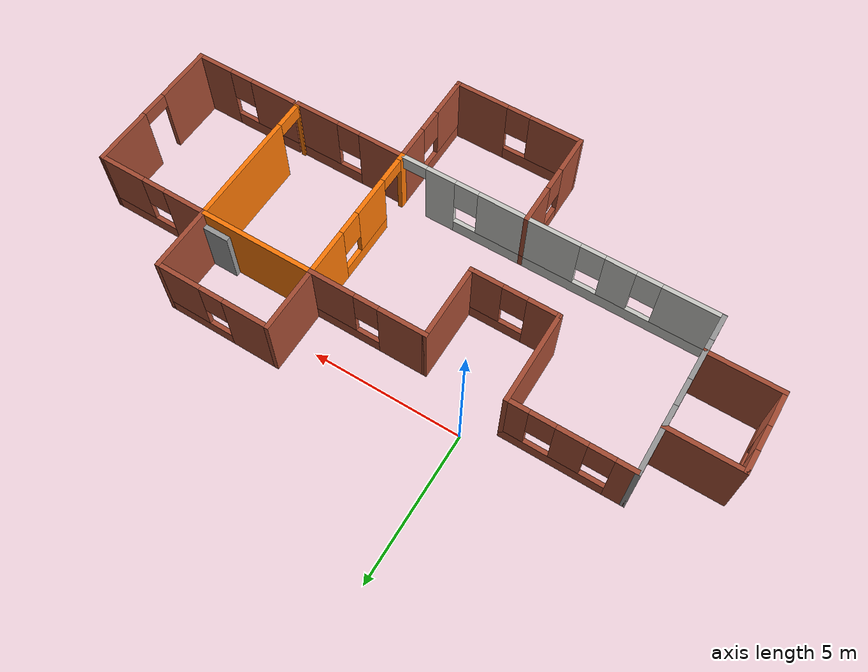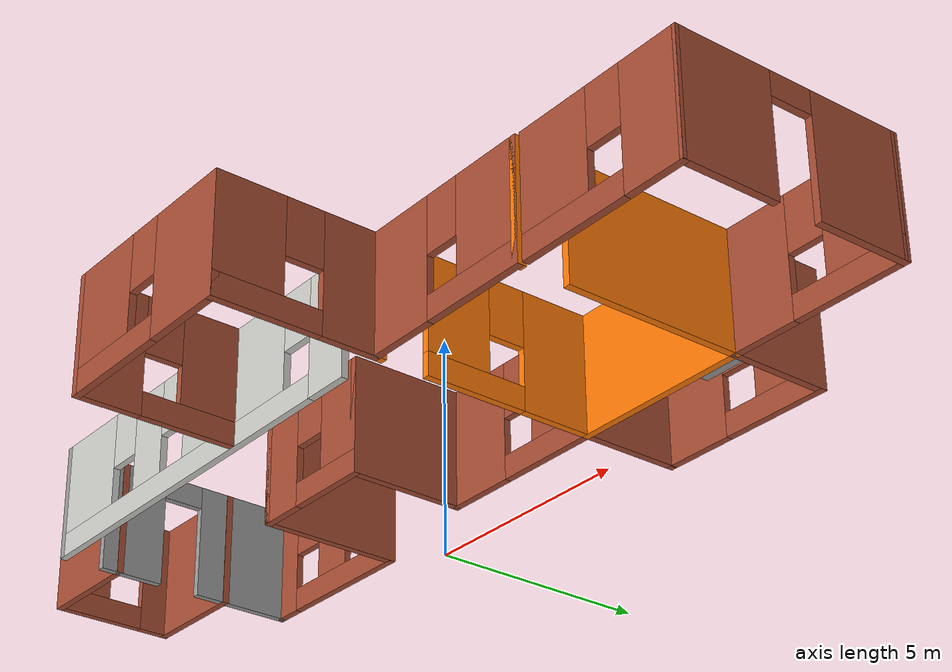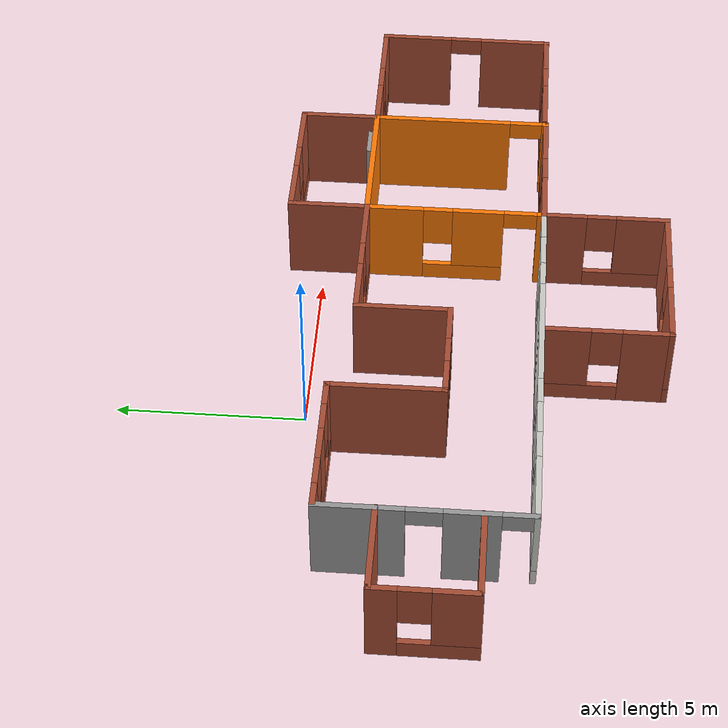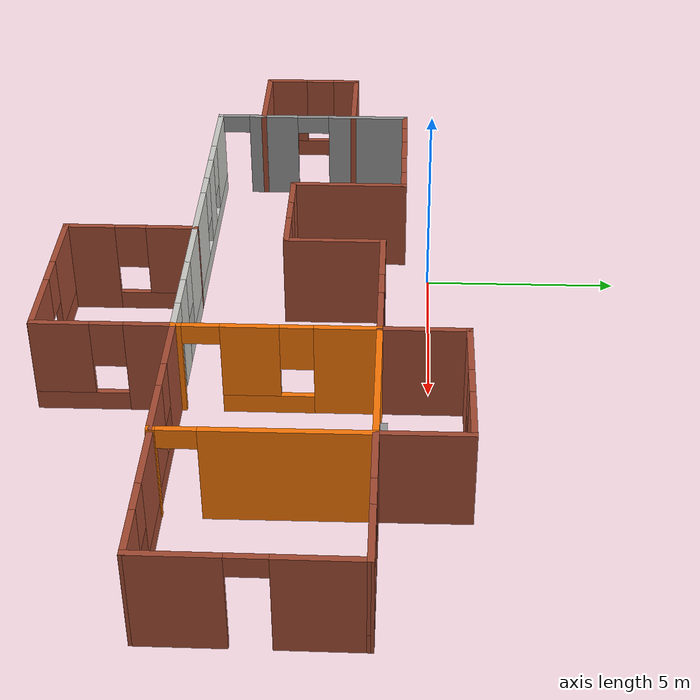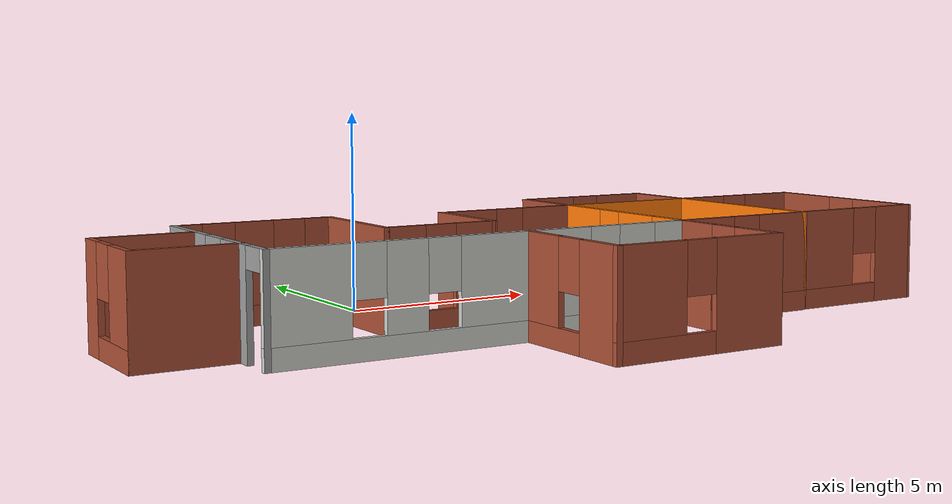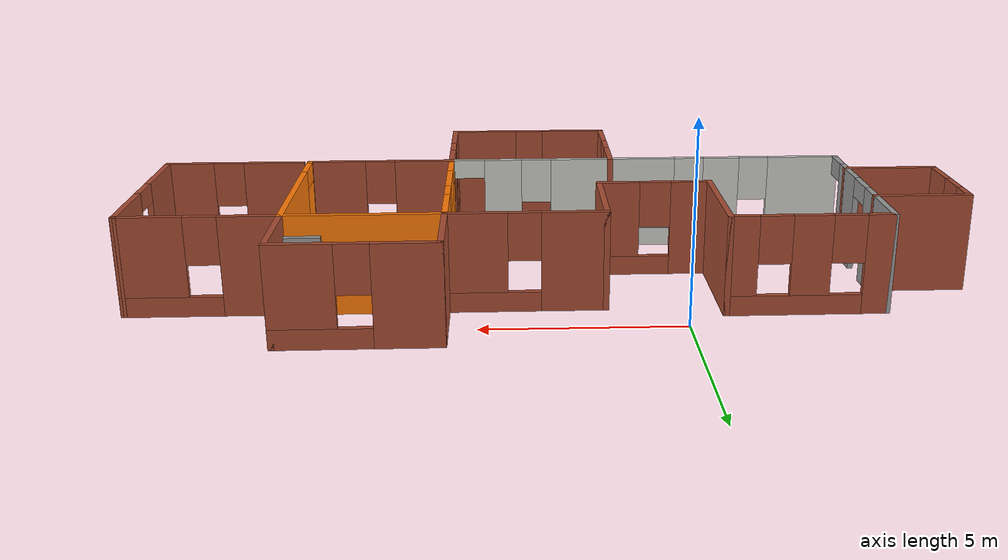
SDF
<?xml version='1.0'?>
<sdf version='1.6'>
  <model name='Level_1'>
    <pose frame=''>3.11777 -4.24 0 0 -0 0</pose>
    <link name='Door_3'>
      <collision name='Door_3_Collision'>
        <geometry>
          <box>
            <size>0.9 0.17 2</size>
          </box>
        </geometry>
        <pose frame=''>0 0 1 0 -0 0</pose>
      </collision>
      <visual name='Door_3_Visual'>
        <pose frame=''>0 0 1 0 -0 0</pose>
        <geometry>
          <box>
            <size>0.9 0.17 2</size>
          </box>
        </geometry>
        <material>
          <script>
            <uri>file://media/materials/scripts/gazebo.material</uri>
            <name>Gazebo/Grey</name>
          </script>
        </material>
      </visual>
      <pose frame=''>5.97774 3.20768 0 0 -0 0</pose>
    </link>
    <link name='Wall_0'>
      <pose frame=''>-6.00277 3.55 0 0 -0 0</pose>
      <visual name='Wall_0_Visual_0'>
        <pose frame=''>-1.66505 0 1.25 0 -0 0</pose>
        <geometry>
          <box>
            <size>0.669906 0.15 2.5</size>
          </box>
        </geometry>
        <material>
          <script>
            <uri>file://media/materials/scripts/gazebo.material</uri>
            <name>Gazebo/Bricks</name>
          </script>
          <ambient>1 1 1 1</ambient>
        </material>
        <meta>
          <layer>0</layer>
        </meta>
      </visual>
      <collision name='Wall_0_Collision_0'>
        <geometry>
          <box>
            <size>0.669906 0.15 2.5</size>
          </box>
        </geometry>
        <pose frame=''>-1.66505 0 1.25 0 -0 0</pose>
      </collision>
      <visual name='Wall_0_Visual_1'>
        <pose frame=''>0.334953 0 0.25 0 -0 0</pose>
        <geometry>
          <box>
            <size>3.33009 0.15 0.5</size>
          </box>
        </geometry>
        <material>
          <script>
            <uri>file://media/materials/scripts/gazebo.material</uri>
            <name>Gazebo/Bricks</name>
          </script>
          <ambient>1 1 1 1</ambient>
        </material>
        <meta>
          <layer>0</layer>
        </meta>
      </visual>
      <collision name='Wall_0_Collision_1'>
        <geometry>
          <box>
            <size>3.33009 0.15 0.5</size>
          </box>
        </geometry>
        <pose frame=''>0.334953 0 0.25 0 -0 0</pose>
      </collision>
      <visual name='Wall_0_Visual_2'>
        <pose frame=''>-0.050625 0 1.5 0 -0 0</pose>
        <geometry>
          <box>
            <size>0.958938 0.15 2</size>
          </box>
        </geometry>
        <material>
          <script>
            <uri>file://media/materials/scripts/gazebo.material</uri>
            <name>Gazebo/Bricks</name>
          </script>
          <ambient>1 1 1 1</ambient>
        </material>
        <meta>
          <layer>0</layer>
        </meta>
      </visual>
      <collision name='Wall_0_Collision_2'>
        <geometry>
          <box>
            <size>0.958938 0.15 2</size>
          </box>
        </geometry>
        <pose frame=''>-0.050625 0 1.5 0 -0 0</pose>
      </collision>
      <visual name='Wall_0_Visual_3'>
        <pose frame=''>1.61442 0 1.5 0 -0 0</pose>
        <geometry>
          <box>
            <size>0.771156 0.15 2</size>
          </box>
        </geometry>
        <material>
          <script>
            <uri>file://media/materials/scripts/gazebo.material</uri>
            <name>Gazebo/Bricks</name>
          </script>
          <ambient>1 1 1 1</ambient>
        </material>
        <meta>
          <layer>0</layer>
        </meta>
      </visual>
      <collision name='Wall_0_Collision_3'>
        <geometry>
          <box>
            <size>0.771156 0.15 2</size>
          </box>
        </geometry>
        <pose frame=''>1.61442 0 1.5 0 -0 0</pose>
      </collision>
      <visual name='Wall_0_Visual_4'>
        <pose frame=''>-0.930094 0 1.9 0 -0 0</pose>
        <geometry>
          <box>
            <size>0.8 0.15 1.2</size>
          </box>
        </geometry>
        <material>
          <script>
            <uri>file://media/materials/scripts/gazebo.material</uri>
            <name>Gazebo/Bricks</name>
          </script>
          <ambient>1 1 1 1</ambient>
        </material>
        <meta>
          <layer>0</layer>
        </meta>
      </visual>
      <collision name='Wall_0_Collision_4'>
        <geometry>
          <box>
            <size>0.8 0.15 1.2</size>
          </box>
        </geometry>
        <pose frame=''>-0.930094 0 1.9 0 -0 0</pose>
      </collision>
      <visual name='Wall_0_Visual_5'>
        <pose frame=''>0.828844 0 1.9 0 -0 0</pose>
        <geometry>
          <box>
            <size>0.8 0.15 1.2</size>
          </box>
        </geometry>
        <material>
          <script>
            <uri>file://media/materials/scripts/gazebo.material</uri>
            <name>Gazebo/Bricks</name>
          </script>
          <ambient>1 1 1 1</ambient>
        </material>
        <meta>
          <layer>0</layer>
        </meta>
      </visual>
      <collision name='Wall_0_Collision_5'>
        <geometry>
          <box>
            <size>0.8 0.15 1.2</size>
          </box>
        </geometry>
        <pose frame=''>0.828844 0 1.9 0 -0 0</pose>
      </collision>
    </link>
    <link name='Wall_1'>
      <collision name='Wall_1_Collision'>
        <geometry>
          <box>
            <size>3.121 0.15 2.5</size>
          </box>
        </geometry>
        <pose frame=''>0 0 1.25 0 -0 0</pose>
      </collision>
      <visual name='Wall_1_Visual'>
        <pose frame=''>0 0 1.25 0 -0 0</pose>
        <geometry>
          <box>
            <size>3.121 0.15 2.5</size>
          </box>
        </geometry>
        <material>
          <script>
            <uri>file://media/materials/scripts/gazebo.material</uri>
            <name>Gazebo/Bricks</name>
          </script>
          <ambient>1 1 1 1</ambient>
        </material>
        <meta>
          <layer>0</layer>
        </meta>
      </visual>
      <pose frame=''>-4.07777 2.0645 0 0 0 -1.5708</pose>
    </link>
    <link name='Wall_10'>
      <pose frame=''>-10.3228 0.751 0 0 0 -1.5708</pose>
      <visual name='Wall_10_Visual_0'>
        <pose frame=''>-0.99483 0 1.25 0 -0 0</pose>
        <geometry>
          <box>
            <size>0.76034 0.15 2.5</size>
          </box>
        </geometry>
        <material>
          <script>
            <uri>file://media/materials/scripts/gazebo.material</uri>
            <name>Gazebo/Bricks</name>
          </script>
          <ambient>1 1 1 1</ambient>
        </material>
        <meta>
          <layer>0</layer>
        </meta>
      </visual>
      <collision name='Wall_10_Collision_0'>
        <geometry>
          <box>
            <size>0.76034 0.15 2.5</size>
          </box>
        </geometry>
        <pose frame=''>-0.99483 0 1.25 0 -0 0</pose>
      </collision>
      <visual name='Wall_10_Visual_1'>
        <pose frame=''>0.38017 0 0.25 0 -0 0</pose>
        <geometry>
          <box>
            <size>1.98966 0.15 0.5</size>
          </box>
        </geometry>
        <material>
          <script>
            <uri>file://media/materials/scripts/gazebo.material</uri>
            <name>Gazebo/Bricks</name>
          </script>
          <ambient>1 1 1 1</ambient>
        </material>
        <meta>
          <layer>0</layer>
        </meta>
      </visual>
      <collision name='Wall_10_Collision_1'>
        <geometry>
          <box>
            <size>1.98966 0.15 0.5</size>
          </box>
        </geometry>
        <pose frame=''>0.38017 0 0.25 0 -0 0</pose>
      </collision>
      <visual name='Wall_10_Visual_2'>
        <pose frame=''>0.78017 0 1.5 0 -0 0</pose>
        <geometry>
          <box>
            <size>1.18966 0.15 2</size>
          </box>
        </geometry>
        <material>
          <script>
            <uri>file://media/materials/scripts/gazebo.material</uri>
            <name>Gazebo/Bricks</name>
          </script>
          <ambient>1 1 1 1</ambient>
        </material>
        <meta>
          <layer>0</layer>
        </meta>
      </visual>
      <collision name='Wall_10_Collision_2'>
        <geometry>
          <box>
            <size>1.18966 0.15 2</size>
          </box>
        </geometry>
        <pose frame=''>0.78017 0 1.5 0 -0 0</pose>
      </collision>
      <visual name='Wall_10_Visual_3'>
        <pose frame=''>-0.21466 0 1.9 0 -0 0</pose>
        <geometry>
          <box>
            <size>0.8 0.15 1.2</size>
          </box>
        </geometry>
        <material>
          <script>
            <uri>file://media/materials/scripts/gazebo.material</uri>
            <name>Gazebo/Bricks</name>
          </script>
          <ambient>1 1 1 1</ambient>
        </material>
        <meta>
          <layer>0</layer>
        </meta>
      </visual>
      <collision name='Wall_10_Collision_3'>
        <geometry>
          <box>
            <size>0.8 0.15 1.2</size>
          </box>
        </geometry>
        <pose frame=''>-0.21466 0 1.9 0 -0 0</pose>
      </collision>
    </link>
    <link name='Wall_11'>
      <collision name='Wall_11_Collision'>
        <geometry>
          <box>
            <size>2.5 0.15 2.5</size>
          </box>
        </geometry>
        <pose frame=''>0 0 1.25 0 -0 0</pose>
      </collision>
      <visual name='Wall_11_Visual'>
        <pose frame=''>0 0 1.25 0 -0 0</pose>
        <geometry>
          <box>
            <size>2.5 0.15 2.5</size>
          </box>
        </geometry>
        <material>
          <script>
            <uri>file://media/materials/scripts/gazebo.material</uri>
            <name>Gazebo/Bricks</name>
          </script>
          <ambient>1 1 1 1</ambient>
        </material>
        <meta>
          <layer>0</layer>
        </meta>
      </visual>
      <pose frame=''>-9.14777 -0.549 0 0 -0 0</pose>
    </link>
    <link name='Wall_13'>
      <pose frame=''>4.54723 -1.8 0 0 -0 0</pose>
      <visual name='Wall_13_Visual_0'>
        <pose frame=''>-1.18832 0 1.25 0 -0 0</pose>
        <geometry>
          <box>
            <size>1.62336 0.15 2.5</size>
          </box>
        </geometry>
        <material>
          <script>
            <uri>file://media/materials/scripts/gazebo.material</uri>
            <name>Gazebo/Bricks</name>
          </script>
          <ambient>1 1 1 1</ambient>
        </material>
        <meta>
          <layer>0</layer>
        </meta>
      </visual>
      <collision name='Wall_13_Collision_0'>
        <geometry>
          <box>
            <size>1.62336 0.15 2.5</size>
          </box>
        </geometry>
        <pose frame=''>-1.18832 0 1.25 0 -0 0</pose>
      </collision>
      <visual name='Wall_13_Visual_1'>
        <pose frame=''>0.811681 0 0.25 0 -0 0</pose>
        <geometry>
          <box>
            <size>2.37664 0.15 0.5</size>
          </box>
        </geometry>
        <material>
          <script>
            <uri>file://media/materials/scripts/gazebo.material</uri>
            <name>Gazebo/Bricks</name>
          </script>
          <ambient>1 1 1 1</ambient>
        </material>
        <meta>
          <layer>0</layer>
        </meta>
      </visual>
      <collision name='Wall_13_Collision_1'>
        <geometry>
          <box>
            <size>2.37664 0.15 0.5</size>
          </box>
        </geometry>
        <pose frame=''>0.811681 0 0.25 0 -0 0</pose>
      </collision>
      <visual name='Wall_13_Visual_2'>
        <pose frame=''>1.21168 0 1.5 0 -0 0</pose>
        <geometry>
          <box>
            <size>1.57664 0.15 2</size>
          </box>
        </geometry>
        <material>
          <script>
            <uri>file://media/materials/scripts/gazebo.material</uri>
            <name>Gazebo/Bricks</name>
          </script>
          <ambient>1 1 1 1</ambient>
        </material>
        <meta>
          <layer>0</layer>
        </meta>
      </visual>
      <collision name='Wall_13_Collision_2'>
        <geometry>
          <box>
            <size>1.57664 0.15 2</size>
          </box>
        </geometry>
        <pose frame=''>1.21168 0 1.5 0 -0 0</pose>
      </collision>
      <visual name='Wall_13_Visual_3'>
        <pose frame=''>0.023361 0 1.9 0 -0 0</pose>
        <geometry>
          <box>
            <size>0.8 0.15 1.2</size>
          </box>
        </geometry>
        <material>
          <script>
            <uri>file://media/materials/scripts/gazebo.material</uri>
            <name>Gazebo/Bricks</name>
          </script>
          <ambient>1 1 1 1</ambient>
        </material>
        <meta>
          <layer>0</layer>
        </meta>
      </visual>
      <collision name='Wall_13_Collision_3'>
        <geometry>
          <box>
            <size>0.8 0.15 1.2</size>
          </box>
        </geometry>
        <pose frame=''>0.023361 0 1.9 0 -0 0</pose>
      </collision>
    </link>
    <link name='Wall_14'>
      <pose frame=''>6.47223 0.625 0 0 -0 1.5708</pose>
      <visual name='Wall_14_Visual_0'>
        <pose frame=''>-2.39992 0 1.25 0 -0 0</pose>
        <geometry>
          <box>
            <size>0.200158 0.15 2.5</size>
          </box>
        </geometry>
        <material>
          <script>
            <uri>file://media/materials/scripts/gazebo.material</uri>
            <name>Gazebo/Grey</name>
          </script>
          <ambient>0.996078 0.47451 0.0196078 1</ambient>
        </material>
        <meta>
          <layer>0</layer>
        </meta>
      </visual>
      <collision name='Wall_14_Collision_0'>
        <geometry>
          <box>
            <size>0.200158 0.15 2.5</size>
          </box>
        </geometry>
        <pose frame=''>-2.39992 0 1.25 0 -0 0</pose>
      </collision>
      <visual name='Wall_14_Visual_1'>
        <pose frame=''>0.550079 0 1.25 0 -0 0</pose>
        <geometry>
          <box>
            <size>3.89984 0.15 2.5</size>
          </box>
        </geometry>
        <material>
          <script>
            <uri>file://media/materials/scripts/gazebo.material</uri>
            <name>Gazebo/Grey</name>
          </script>
          <ambient>0.996078 0.47451 0.0196078 1</ambient>
        </material>
        <meta>
          <layer>0</layer>
        </meta>
      </visual>
      <collision name='Wall_14_Collision_1'>
        <geometry>
          <box>
            <size>3.89984 0.15 2.5</size>
          </box>
        </geometry>
        <pose frame=''>0.550079 0 1.25 0 -0 0</pose>
      </collision>
      <visual name='Wall_14_Visual_2'>
        <pose frame=''>-1.84984 0 2.25 0 -0 0</pose>
        <geometry>
          <box>
            <size>0.9 0.15 0.5</size>
          </box>
        </geometry>
        <material>
          <script>
            <uri>file://media/materials/scripts/gazebo.material</uri>
            <name>Gazebo/Grey</name>
          </script>
          <ambient>0.996078 0.47451 0.0196078 1</ambient>
        </material>
        <meta>
          <layer>0</layer>
        </meta>
      </visual>
      <collision name='Wall_14_Collision_2'>
        <geometry>
          <box>
            <size>0.9 0.15 0.5</size>
          </box>
        </geometry>
        <pose frame=''>-1.84984 0 2.25 0 -0 0</pose>
      </collision>
    </link>
    <link name='Wall_15'>
      <collision name='Wall_15_Collision'>
        <geometry>
          <box>
            <size>4 0.15 2.5</size>
          </box>
        </geometry>
        <pose frame=''>0 0 1.25 0 -0 0</pose>
      </collision>
      <visual name='Wall_15_Visual'>
        <pose frame=''>0 0 1.25 0 -0 0</pose>
        <geometry>
          <box>
            <size>4 0.15 2.5</size>
          </box>
        </geometry>
        <material>
          <script>
            <uri>file://media/materials/scripts/gazebo.material</uri>
            <name>Gazebo/Grey</name>
          </script>
          <ambient>0.996078 0.47451 0.0196078 1</ambient>
        </material>
        <meta>
          <layer>0</layer>
        </meta>
      </visual>
      <pose frame=''>4.54723 3.05 0 0 -0 3.14159</pose>
    </link>
    <link name='Wall_16'>
      <collision name='Wall_16_Collision'>
        <geometry>
          <box>
            <size>2.25 0.15 2.5</size>
          </box>
        </geometry>
        <pose frame=''>0 0 1.25 0 -0 0</pose>
      </collision>
      <visual name='Wall_16_Visual'>
        <pose frame=''>0 0 1.25 0 -0 0</pose>
        <geometry>
          <box>
            <size>2.25 0.15 2.5</size>
          </box>
        </geometry>
        <material>
          <script>
            <uri>file://media/materials/scripts/gazebo.material</uri>
            <name>Gazebo/Bricks</name>
          </script>
          <ambient>1 1 1 1</ambient>
        </material>
        <meta>
          <layer>0</layer>
        </meta>
      </visual>
      <pose frame=''>2.62223 4.1 0 0 -0 1.5708</pose>
    </link>
    <link name='Wall_17'>
      <pose frame=''>4.54723 5.15 0 0 -0 0</pose>
      <visual name='Wall_17_Visual_0'>
        <pose frame=''>-1.18832 0 1.25 0 -0 0</pose>
        <geometry>
          <box>
            <size>1.62336 0.15 2.5</size>
          </box>
        </geometry>
        <material>
          <script>
            <uri>file://media/materials/scripts/gazebo.material</uri>
            <name>Gazebo/Bricks</name>
          </script>
          <ambient>1 1 1 1</ambient>
        </material>
        <meta>
          <layer>0</layer>
        </meta>
      </visual>
      <collision name='Wall_17_Collision_0'>
        <geometry>
          <box>
            <size>1.62336 0.15 2.5</size>
          </box>
        </geometry>
        <pose frame=''>-1.18832 0 1.25 0 -0 0</pose>
      </collision>
      <visual name='Wall_17_Visual_1'>
        <pose frame=''>0.811681 0 0.25 0 -0 0</pose>
        <geometry>
          <box>
            <size>2.37664 0.15 0.5</size>
          </box>
        </geometry>
        <material>
          <script>
            <uri>file://media/materials/scripts/gazebo.material</uri>
            <name>Gazebo/Bricks</name>
          </script>
          <ambient>1 1 1 1</ambient>
        </material>
        <meta>
          <layer>0</layer>
        </meta>
      </visual>
      <collision name='Wall_17_Collision_1'>
        <geometry>
          <box>
            <size>2.37664 0.15 0.5</size>
          </box>
        </geometry>
        <pose frame=''>0.811681 0 0.25 0 -0 0</pose>
      </collision>
      <visual name='Wall_17_Visual_2'>
        <pose frame=''>1.21168 0 1.5 0 -0 0</pose>
        <geometry>
          <box>
            <size>1.57664 0.15 2</size>
          </box>
        </geometry>
        <material>
          <script>
            <uri>file://media/materials/scripts/gazebo.material</uri>
            <name>Gazebo/Bricks</name>
          </script>
          <ambient>1 1 1 1</ambient>
        </material>
        <meta>
          <layer>0</layer>
        </meta>
      </visual>
      <collision name='Wall_17_Collision_2'>
        <geometry>
          <box>
            <size>1.57664 0.15 2</size>
          </box>
        </geometry>
        <pose frame=''>1.21168 0 1.5 0 -0 0</pose>
      </collision>
      <visual name='Wall_17_Visual_3'>
        <pose frame=''>0.023361 0 1.9 0 -0 0</pose>
        <geometry>
          <box>
            <size>0.8 0.15 1.2</size>
          </box>
        </geometry>
        <material>
          <script>
            <uri>file://media/materials/scripts/gazebo.material</uri>
            <name>Gazebo/Bricks</name>
          </script>
          <ambient>1 1 1 1</ambient>
        </material>
        <meta>
          <layer>0</layer>
        </meta>
      </visual>
      <collision name='Wall_17_Collision_3'>
        <geometry>
          <box>
            <size>0.8 0.15 1.2</size>
          </box>
        </geometry>
        <pose frame=''>0.023361 0 1.9 0 -0 0</pose>
      </collision>
    </link>
    <link name='Wall_18'>
      <collision name='Wall_18_Collision'>
        <geometry>
          <box>
            <size>2.25 0.15 2.5</size>
          </box>
        </geometry>
        <pose frame=''>0 0 1.25 0 -0 0</pose>
      </collision>
      <visual name='Wall_18_Visual'>
        <pose frame=''>0 0 1.25 0 -0 0</pose>
        <geometry>
          <box>
            <size>2.25 0.15 2.5</size>
          </box>
        </geometry>
        <material>
          <script>
            <uri>file://media/materials/scripts/gazebo.material</uri>
            <name>Gazebo/Bricks</name>
          </script>
          <ambient>1 1 1 1</ambient>
        </material>
        <meta>
          <layer>0</layer>
        </meta>
      </visual>
      <pose frame=''>6.47223 4.1 0 0 0 -1.5708</pose>
    </link>
    <link name='Wall_2'>
      <pose frame=''>-2.65277 0.579 0 0 -0 0</pose>
      <visual name='Wall_2_Visual_0'>
        <pose frame=''>-0.961732 0 1.25 0 -0 0</pose>
        <geometry>
          <box>
            <size>1.07654 0.15 2.5</size>
          </box>
        </geometry>
        <material>
          <script>
            <uri>file://media/materials/scripts/gazebo.material</uri>
            <name>Gazebo/Bricks</name>
          </script>
          <ambient>1 1 1 1</ambient>
        </material>
        <meta>
          <layer>0</layer>
        </meta>
      </visual>
      <collision name='Wall_2_Collision_0'>
        <geometry>
          <box>
            <size>1.07654 0.15 2.5</size>
          </box>
        </geometry>
        <pose frame=''>-0.961732 0 1.25 0 -0 0</pose>
      </collision>
      <visual name='Wall_2_Visual_1'>
        <pose frame=''>0.538268 0 0.25 0 -0 0</pose>
        <geometry>
          <box>
            <size>1.92346 0.15 0.5</size>
          </box>
        </geometry>
        <material>
          <script>
            <uri>file://media/materials/scripts/gazebo.material</uri>
            <name>Gazebo/Bricks</name>
          </script>
          <ambient>1 1 1 1</ambient>
        </material>
        <meta>
          <layer>0</layer>
        </meta>
      </visual>
      <collision name='Wall_2_Collision_1'>
        <geometry>
          <box>
            <size>1.92346 0.15 0.5</size>
          </box>
        </geometry>
        <pose frame=''>0.538268 0 0.25 0 -0 0</pose>
      </collision>
      <visual name='Wall_2_Visual_2'>
        <pose frame=''>0.938268 0 1.5 0 -0 0</pose>
        <geometry>
          <box>
            <size>1.12346 0.15 2</size>
          </box>
        </geometry>
        <material>
          <script>
            <uri>file://media/materials/scripts/gazebo.material</uri>
            <name>Gazebo/Bricks</name>
          </script>
          <ambient>1 1 1 1</ambient>
        </material>
        <meta>
          <layer>0</layer>
        </meta>
      </visual>
      <collision name='Wall_2_Collision_2'>
        <geometry>
          <box>
            <size>1.12346 0.15 2</size>
          </box>
        </geometry>
        <pose frame=''>0.938268 0 1.5 0 -0 0</pose>
      </collision>
      <visual name='Wall_2_Visual_3'>
        <pose frame=''>-0.023464 0 1.9 0 -0 0</pose>
        <geometry>
          <box>
            <size>0.8 0.15 1.2</size>
          </box>
        </geometry>
        <material>
          <script>
            <uri>file://media/materials/scripts/gazebo.material</uri>
            <name>Gazebo/Bricks</name>
          </script>
          <ambient>1 1 1 1</ambient>
        </material>
        <meta>
          <layer>0</layer>
        </meta>
      </visual>
      <collision name='Wall_2_Collision_3'>
        <geometry>
          <box>
            <size>0.8 0.15 1.2</size>
          </box>
        </geometry>
        <pose frame=''>-0.023464 0 1.9 0 -0 0</pose>
      </collision>
    </link>
    <link name='Wall_20'>
      <pose frame=''>2.62223 -3.475 0 0 0 -1.5708</pose>
      <visual name='Wall_20_Visual_0'>
        <pose frame=''>-1.12713 0 1.25 0 -0 0</pose>
        <geometry>
          <box>
            <size>1.24575 0.15 2.5</size>
          </box>
        </geometry>
        <material>
          <script>
            <uri>file://media/materials/scripts/gazebo.material</uri>
            <name>Gazebo/Bricks</name>
          </script>
          <ambient>1 1 1 1</ambient>
        </material>
        <meta>
          <layer>0</layer>
        </meta>
      </visual>
      <collision name='Wall_20_Collision_0'>
        <geometry>
          <box>
            <size>1.24575 0.15 2.5</size>
          </box>
        </geometry>
        <pose frame=''>-1.12713 0 1.25 0 -0 0</pose>
      </collision>
      <visual name='Wall_20_Visual_1'>
        <pose frame=''>0.622873 0 0.25 0 -0 0</pose>
        <geometry>
          <box>
            <size>2.25425 0.15 0.5</size>
          </box>
        </geometry>
        <material>
          <script>
            <uri>file://media/materials/scripts/gazebo.material</uri>
            <name>Gazebo/Bricks</name>
          </script>
          <ambient>1 1 1 1</ambient>
        </material>
        <meta>
          <layer>0</layer>
        </meta>
      </visual>
      <collision name='Wall_20_Collision_1'>
        <geometry>
          <box>
            <size>2.25425 0.15 0.5</size>
          </box>
        </geometry>
        <pose frame=''>0.622873 0 0.25 0 -0 0</pose>
      </collision>
      <visual name='Wall_20_Visual_2'>
        <pose frame=''>1.02287 0 1.5 0 -0 0</pose>
        <geometry>
          <box>
            <size>1.45425 0.15 2</size>
          </box>
        </geometry>
        <material>
          <script>
            <uri>file://media/materials/scripts/gazebo.material</uri>
            <name>Gazebo/Bricks</name>
          </script>
          <ambient>1 1 1 1</ambient>
        </material>
        <meta>
          <layer>0</layer>
        </meta>
      </visual>
      <collision name='Wall_20_Collision_2'>
        <geometry>
          <box>
            <size>1.45425 0.15 2</size>
          </box>
        </geometry>
        <pose frame=''>1.02287 0 1.5 0 -0 0</pose>
      </collision>
      <visual name='Wall_20_Visual_3'>
        <pose frame=''>-0.104254 0 1.9 0 -0 0</pose>
        <geometry>
          <box>
            <size>0.8 0.15 1.2</size>
          </box>
        </geometry>
        <material>
          <script>
            <uri>file://media/materials/scripts/gazebo.material</uri>
            <name>Gazebo/Bricks</name>
          </script>
          <ambient>1 1 1 1</ambient>
        </material>
        <meta>
          <layer>0</layer>
        </meta>
      </visual>
      <collision name='Wall_20_Collision_3'>
        <geometry>
          <box>
            <size>0.8 0.15 1.2</size>
          </box>
        </geometry>
        <pose frame=''>-0.104254 0 1.9 0 -0 0</pose>
      </collision>
    </link>
    <link name='Wall_21'>
      <pose frame=''>0.447228 -5.15 0 0 -0 3.14159</pose>
      <visual name='Wall_21_Visual_0'>
        <pose frame=''>-1.31113 0 1.25 0 -0 0</pose>
        <geometry>
          <box>
            <size>1.87773 0.15 2.5</size>
          </box>
        </geometry>
        <material>
          <script>
            <uri>file://media/materials/scripts/gazebo.material</uri>
            <name>Gazebo/Bricks</name>
          </script>
          <ambient>1 1 1 1</ambient>
        </material>
        <meta>
          <layer>0</layer>
        </meta>
      </visual>
      <collision name='Wall_21_Collision_0'>
        <geometry>
          <box>
            <size>1.87773 0.15 2.5</size>
          </box>
        </geometry>
        <pose frame=''>-1.31113 0 1.25 0 -0 0</pose>
      </collision>
      <visual name='Wall_21_Visual_1'>
        <pose frame=''>0.938867 0 0.25 0 -0 0</pose>
        <geometry>
          <box>
            <size>2.62227 0.15 0.5</size>
          </box>
        </geometry>
        <material>
          <script>
            <uri>file://media/materials/scripts/gazebo.material</uri>
            <name>Gazebo/Bricks</name>
          </script>
          <ambient>1 1 1 1</ambient>
        </material>
        <meta>
          <layer>0</layer>
        </meta>
      </visual>
      <collision name='Wall_21_Collision_1'>
        <geometry>
          <box>
            <size>2.62227 0.15 0.5</size>
          </box>
        </geometry>
        <pose frame=''>0.938867 0 0.25 0 -0 0</pose>
      </collision>
      <visual name='Wall_21_Visual_2'>
        <pose frame=''>1.33887 0 1.5 0 -0 0</pose>
        <geometry>
          <box>
            <size>1.82227 0.15 2</size>
          </box>
        </geometry>
        <material>
          <script>
            <uri>file://media/materials/scripts/gazebo.material</uri>
            <name>Gazebo/Bricks</name>
          </script>
          <ambient>1 1 1 1</ambient>
        </material>
        <meta>
          <layer>0</layer>
        </meta>
      </visual>
      <collision name='Wall_21_Collision_2'>
        <geometry>
          <box>
            <size>1.82227 0.15 2</size>
          </box>
        </geometry>
        <pose frame=''>1.33887 0 1.5 0 -0 0</pose>
      </collision>
      <visual name='Wall_21_Visual_3'>
        <pose frame=''>0.027733 0 1.9 0 -0 0</pose>
        <geometry>
          <box>
            <size>0.8 0.15 1.2</size>
          </box>
        </geometry>
        <material>
          <script>
            <uri>file://media/materials/scripts/gazebo.material</uri>
            <name>Gazebo/Bricks</name>
          </script>
          <ambient>1 1 1 1</ambient>
        </material>
        <meta>
          <layer>0</layer>
        </meta>
      </visual>
      <collision name='Wall_21_Collision_3'>
        <geometry>
          <box>
            <size>0.8 0.15 1.2</size>
          </box>
        </geometry>
        <pose frame=''>0.027733 0 1.9 0 -0 0</pose>
      </collision>
    </link>
    <link name='Wall_22'>
      <pose frame=''>-1.72777 -3.475 0 0 -0 1.5708</pose>
      <visual name='Wall_22_Visual_0'>
        <pose frame=''>-1.07564 0 1.25 0 -0 0</pose>
        <geometry>
          <box>
            <size>1.34872 0.15 2.5</size>
          </box>
        </geometry>
        <material>
          <script>
            <uri>file://media/materials/scripts/gazebo.material</uri>
            <name>Gazebo/Bricks</name>
          </script>
          <ambient>1 1 1 1</ambient>
        </material>
        <meta>
          <layer>0</layer>
        </meta>
      </visual>
      <collision name='Wall_22_Collision_0'>
        <geometry>
          <box>
            <size>1.34872 0.15 2.5</size>
          </box>
        </geometry>
        <pose frame=''>-1.07564 0 1.25 0 -0 0</pose>
      </collision>
      <visual name='Wall_22_Visual_1'>
        <pose frame=''>0.674359 0 0.25 0 -0 0</pose>
        <geometry>
          <box>
            <size>2.15128 0.15 0.5</size>
          </box>
        </geometry>
        <material>
          <script>
            <uri>file://media/materials/scripts/gazebo.material</uri>
            <name>Gazebo/Bricks</name>
          </script>
          <ambient>1 1 1 1</ambient>
        </material>
        <meta>
          <layer>0</layer>
        </meta>
      </visual>
      <collision name='Wall_22_Collision_1'>
        <geometry>
          <box>
            <size>2.15128 0.15 0.5</size>
          </box>
        </geometry>
        <pose frame=''>0.674359 0 0.25 0 -0 0</pose>
      </collision>
      <visual name='Wall_22_Visual_2'>
        <pose frame=''>1.07436 0 1.5 0 -0 0</pose>
        <geometry>
          <box>
            <size>1.35128 0.15 2</size>
          </box>
        </geometry>
        <material>
          <script>
            <uri>file://media/materials/scripts/gazebo.material</uri>
            <name>Gazebo/Bricks</name>
          </script>
          <ambient>1 1 1 1</ambient>
        </material>
        <meta>
          <layer>0</layer>
        </meta>
      </visual>
      <collision name='Wall_22_Collision_2'>
        <geometry>
          <box>
            <size>1.35128 0.15 2</size>
          </box>
        </geometry>
        <pose frame=''>1.07436 0 1.5 0 -0 0</pose>
      </collision>
      <visual name='Wall_22_Visual_3'>
        <pose frame=''>-0.001282 0 1.9 0 -0 0</pose>
        <geometry>
          <box>
            <size>0.8 0.15 1.2</size>
          </box>
        </geometry>
        <material>
          <script>
            <uri>file://media/materials/scripts/gazebo.material</uri>
            <name>Gazebo/Bricks</name>
          </script>
          <ambient>1 1 1 1</ambient>
        </material>
        <meta>
          <layer>0</layer>
        </meta>
      </visual>
      <collision name='Wall_22_Collision_3'>
        <geometry>
          <box>
            <size>0.8 0.15 1.2</size>
          </box>
        </geometry>
        <pose frame=''>-0.001282 0 1.9 0 -0 0</pose>
      </collision>
    </link>
    <link name='Wall_24'>
      <pose frame=''>8.39723 3.05 0 0 -0 0</pose>
      <visual name='Wall_24_Visual_0'>
        <pose frame=''>-1.23126 0 1.25 0 -0 0</pose>
        <geometry>
          <box>
            <size>1.53749 0.15 2.5</size>
          </box>
        </geometry>
        <material>
          <script>
            <uri>file://media/materials/scripts/gazebo.material</uri>
            <name>Gazebo/Bricks</name>
          </script>
          <ambient>1 1 1 1</ambient>
        </material>
        <meta>
          <layer>0</layer>
        </meta>
      </visual>
      <collision name='Wall_24_Collision_0'>
        <geometry>
          <box>
            <size>1.53749 0.15 2.5</size>
          </box>
        </geometry>
        <pose frame=''>-1.23126 0 1.25 0 -0 0</pose>
      </collision>
      <visual name='Wall_24_Visual_1'>
        <pose frame=''>0.768744 0 0.25 0 -0 0</pose>
        <geometry>
          <box>
            <size>2.46251 0.15 0.5</size>
          </box>
        </geometry>
        <material>
          <script>
            <uri>file://media/materials/scripts/gazebo.material</uri>
            <name>Gazebo/Bricks</name>
          </script>
          <ambient>1 1 1 1</ambient>
        </material>
        <meta>
          <layer>0</layer>
        </meta>
      </visual>
      <collision name='Wall_24_Collision_1'>
        <geometry>
          <box>
            <size>2.46251 0.15 0.5</size>
          </box>
        </geometry>
        <pose frame=''>0.768744 0 0.25 0 -0 0</pose>
      </collision>
      <visual name='Wall_24_Visual_2'>
        <pose frame=''>1.16874 0 1.5 0 -0 0</pose>
        <geometry>
          <box>
            <size>1.66251 0.15 2</size>
          </box>
        </geometry>
        <material>
          <script>
            <uri>file://media/materials/scripts/gazebo.material</uri>
            <name>Gazebo/Bricks</name>
          </script>
          <ambient>1 1 1 1</ambient>
        </material>
        <meta>
          <layer>0</layer>
        </meta>
      </visual>
      <collision name='Wall_24_Collision_2'>
        <geometry>
          <box>
            <size>1.66251 0.15 2</size>
          </box>
        </geometry>
        <pose frame=''>1.16874 0 1.5 0 -0 0</pose>
      </collision>
      <visual name='Wall_24_Visual_3'>
        <pose frame=''>-0.062511 0 1.9 0 -0 0</pose>
        <geometry>
          <box>
            <size>0.8 0.15 1.2</size>
          </box>
        </geometry>
        <material>
          <script>
            <uri>file://media/materials/scripts/gazebo.material</uri>
            <name>Gazebo/Bricks</name>
          </script>
          <ambient>1 1 1 1</ambient>
        </material>
        <meta>
          <layer>0</layer>
        </meta>
      </visual>
      <collision name='Wall_24_Collision_3'>
        <geometry>
          <box>
            <size>0.8 0.15 1.2</size>
          </box>
        </geometry>
        <pose frame=''>-0.062511 0 1.9 0 -0 0</pose>
      </collision>
    </link>
    <link name='Wall_25'>
      <pose frame=''>10.3047 0.6445 0 0 0 -1.57807</pose>
      <visual name='Wall_25_Visual_0'>
        <pose frame=''>-1.46301 0 1.25 0 -0 0</pose>
        <geometry>
          <box>
            <size>2.03517 0.15 2.5</size>
          </box>
        </geometry>
        <material>
          <script>
            <uri>file://media/materials/scripts/gazebo.material</uri>
            <name>Gazebo/Bricks</name>
          </script>
          <ambient>1 1 1 1</ambient>
        </material>
        <meta>
          <layer>0</layer>
        </meta>
      </visual>
      <collision name='Wall_25_Collision_0'>
        <geometry>
          <box>
            <size>2.03517 0.15 2.5</size>
          </box>
        </geometry>
        <pose frame=''>-1.46301 0 1.25 0 -0 0</pose>
      </collision>
      <visual name='Wall_25_Visual_1'>
        <pose frame=''>1.46759 0 1.25 0 -0 0</pose>
        <geometry>
          <box>
            <size>2.02603 0.15 2.5</size>
          </box>
        </geometry>
        <material>
          <script>
            <uri>file://media/materials/scripts/gazebo.material</uri>
            <name>Gazebo/Bricks</name>
          </script>
          <ambient>1 1 1 1</ambient>
        </material>
        <meta>
          <layer>0</layer>
        </meta>
      </visual>
      <collision name='Wall_25_Collision_1'>
        <geometry>
          <box>
            <size>2.02603 0.15 2.5</size>
          </box>
        </geometry>
        <pose frame=''>1.46759 0 1.25 0 -0 0</pose>
      </collision>
      <visual name='Wall_25_Visual_2'>
        <pose frame=''>0.004573 0 2.25 0 -0 0</pose>
        <geometry>
          <box>
            <size>0.9 0.15 0.5</size>
          </box>
        </geometry>
        <material>
          <script>
            <uri>file://media/materials/scripts/gazebo.material</uri>
            <name>Gazebo/Bricks</name>
          </script>
          <ambient>1 1 1 1</ambient>
        </material>
        <meta>
          <layer>0</layer>
        </meta>
      </visual>
      <collision name='Wall_25_Collision_2'>
        <geometry>
          <box>
            <size>0.9 0.15 0.5</size>
          </box>
        </geometry>
        <pose frame=''>0.004573 0 2.25 0 -0 0</pose>
      </collision>
    </link>
    <link name='Wall_26'>
      <pose frame=''>8.48723 -1.761 0 0 -0 3.14159</pose>
      <visual name='Wall_26_Visual_0'>
        <pose frame=''>-1.21964 0 1.25 0 -0 0</pose>
        <geometry>
          <box>
            <size>1.31072 0.15 2.5</size>
          </box>
        </geometry>
        <material>
          <script>
            <uri>file://media/materials/scripts/gazebo.material</uri>
            <name>Gazebo/Bricks</name>
          </script>
          <ambient>1 1 1 1</ambient>
        </material>
        <meta>
          <layer>0</layer>
        </meta>
      </visual>
      <collision name='Wall_26_Collision_0'>
        <geometry>
          <box>
            <size>1.31072 0.15 2.5</size>
          </box>
        </geometry>
        <pose frame=''>-1.21964 0 1.25 0 -0 0</pose>
      </collision>
      <visual name='Wall_26_Visual_1'>
        <pose frame=''>0.655361 0 0.25 0 -0 0</pose>
        <geometry>
          <box>
            <size>2.43928 0.15 0.5</size>
          </box>
        </geometry>
        <material>
          <script>
            <uri>file://media/materials/scripts/gazebo.material</uri>
            <name>Gazebo/Bricks</name>
          </script>
          <ambient>1 1 1 1</ambient>
        </material>
        <meta>
          <layer>0</layer>
        </meta>
      </visual>
      <collision name='Wall_26_Collision_1'>
        <geometry>
          <box>
            <size>2.43928 0.15 0.5</size>
          </box>
        </geometry>
        <pose frame=''>0.655361 0 0.25 0 -0 0</pose>
      </collision>
      <visual name='Wall_26_Visual_2'>
        <pose frame=''>1.05536 0 1.5 0 -0 0</pose>
        <geometry>
          <box>
            <size>1.63928 0.15 2</size>
          </box>
        </geometry>
        <material>
          <script>
            <uri>file://media/materials/scripts/gazebo.material</uri>
            <name>Gazebo/Bricks</name>
          </script>
          <ambient>1 1 1 1</ambient>
        </material>
        <meta>
          <layer>0</layer>
        </meta>
      </visual>
      <collision name='Wall_26_Collision_2'>
        <geometry>
          <box>
            <size>1.63928 0.15 2</size>
          </box>
        </geometry>
        <pose frame=''>1.05536 0 1.5 0 -0 0</pose>
      </collision>
      <visual name='Wall_26_Visual_3'>
        <pose frame=''>-0.164277 0 1.9 0 -0 0</pose>
        <geometry>
          <box>
            <size>0.8 0.15 1.2</size>
          </box>
        </geometry>
        <material>
          <script>
            <uri>file://media/materials/scripts/gazebo.material</uri>
            <name>Gazebo/Bricks</name>
          </script>
          <ambient>1 1 1 1</ambient>
        </material>
        <meta>
          <layer>0</layer>
        </meta>
      </visual>
      <collision name='Wall_26_Collision_3'>
        <geometry>
          <box>
            <size>0.8 0.15 1.2</size>
          </box>
        </geometry>
        <pose frame=''>-0.164277 0 1.9 0 -0 0</pose>
      </collision>
    </link>
    <link name='Wall_3'>
      <collision name='Wall_3_Collision'>
        <geometry>
          <box>
            <size>2.621 0.15 2.5</size>
          </box>
        </geometry>
        <pose frame=''>0 0 1.25 0 -0 0</pose>
      </collision>
      <visual name='Wall_3_Visual'>
        <pose frame=''>0 0 1.25 0 -0 0</pose>
        <geometry>
          <box>
            <size>2.621 0.15 2.5</size>
          </box>
        </geometry>
        <material>
          <script>
            <uri>file://media/materials/scripts/gazebo.material</uri>
            <name>Gazebo/Bricks</name>
          </script>
          <ambient>1 1 1 1</ambient>
        </material>
        <meta>
          <layer>0</layer>
        </meta>
      </visual>
      <pose frame=''>-1.22777 1.8145 0 0 -0 1.5708</pose>
    </link>
    <link name='Wall_4'>
      <pose frame=''>0.697228 3.05 0 0 -0 0</pose>
      <visual name='Wall_4_Visual_0'>
        <pose frame=''>-1.18056 0 1.25 0 -0 0</pose>
        <geometry>
          <box>
            <size>1.63888 0.15 2.5</size>
          </box>
        </geometry>
        <material>
          <script>
            <uri>file://media/materials/scripts/gazebo.material</uri>
            <name>Gazebo/Bricks</name>
          </script>
          <ambient>1 1 1 1</ambient>
        </material>
        <meta>
          <layer>0</layer>
        </meta>
      </visual>
      <collision name='Wall_4_Collision_0'>
        <geometry>
          <box>
            <size>1.63888 0.15 2.5</size>
          </box>
        </geometry>
        <pose frame=''>-1.18056 0 1.25 0 -0 0</pose>
      </collision>
      <visual name='Wall_4_Visual_1'>
        <pose frame=''>0.819438 0 0.25 0 -0 0</pose>
        <geometry>
          <box>
            <size>2.36112 0.15 0.5</size>
          </box>
        </geometry>
        <material>
          <script>
            <uri>file://media/materials/scripts/gazebo.material</uri>
            <name>Gazebo/Bricks</name>
          </script>
          <ambient>1 1 1 1</ambient>
        </material>
        <meta>
          <layer>0</layer>
        </meta>
      </visual>
      <collision name='Wall_4_Collision_1'>
        <geometry>
          <box>
            <size>2.36112 0.15 0.5</size>
          </box>
        </geometry>
        <pose frame=''>0.819438 0 0.25 0 -0 0</pose>
      </collision>
      <visual name='Wall_4_Visual_2'>
        <pose frame=''>1.21944 0 1.5 0 -0 0</pose>
        <geometry>
          <box>
            <size>1.56112 0.15 2</size>
          </box>
        </geometry>
        <material>
          <script>
            <uri>file://media/materials/scripts/gazebo.material</uri>
            <name>Gazebo/Bricks</name>
          </script>
          <ambient>1 1 1 1</ambient>
        </material>
        <meta>
          <layer>0</layer>
        </meta>
      </visual>
      <collision name='Wall_4_Collision_2'>
        <geometry>
          <box>
            <size>1.56112 0.15 2</size>
          </box>
        </geometry>
        <pose frame=''>1.21944 0 1.5 0 -0 0</pose>
      </collision>
      <visual name='Wall_4_Visual_3'>
        <pose frame=''>0.038876 0 1.9 0 -0 0</pose>
        <geometry>
          <box>
            <size>0.8 0.15 1.2</size>
          </box>
        </geometry>
        <material>
          <script>
            <uri>file://media/materials/scripts/gazebo.material</uri>
            <name>Gazebo/Bricks</name>
          </script>
          <ambient>1 1 1 1</ambient>
        </material>
        <meta>
          <layer>0</layer>
        </meta>
      </visual>
      <collision name='Wall_4_Collision_3'>
        <geometry>
          <box>
            <size>0.8 0.15 1.2</size>
          </box>
        </geometry>
        <pose frame=''>0.038876 0 1.9 0 -0 0</pose>
      </collision>
    </link>
    <link name='Wall_5'>
      <pose frame=''>2.62223 0.625 0 0 0 -1.5708</pose>
      <visual name='Wall_5_Visual_0'>
        <pose frame=''>-1.68598 0 1.25 0 -0 0</pose>
        <geometry>
          <box>
            <size>1.62804 0.15 2.5</size>
          </box>
        </geometry>
        <material>
          <script>
            <uri>file://media/materials/scripts/gazebo.material</uri>
            <name>Gazebo/Grey</name>
          </script>
          <ambient>0.996078 0.47451 0.0196078 1</ambient>
        </material>
        <meta>
          <layer>0</layer>
        </meta>
      </visual>
      <collision name='Wall_5_Collision_0'>
        <geometry>
          <box>
            <size>1.62804 0.15 2.5</size>
          </box>
        </geometry>
        <pose frame=''>-1.68598 0 1.25 0 -0 0</pose>
      </collision>
      <visual name='Wall_5_Visual_1'>
        <pose frame=''>2.36474 0 1.25 0 -0 0</pose>
        <geometry>
          <box>
            <size>0.270516 0.15 2.5</size>
          </box>
        </geometry>
        <material>
          <script>
            <uri>file://media/materials/scripts/gazebo.material</uri>
            <name>Gazebo/Grey</name>
          </script>
          <ambient>0.996078 0.47451 0.0196078 1</ambient>
        </material>
        <meta>
          <layer>0</layer>
        </meta>
      </visual>
      <collision name='Wall_5_Collision_1'>
        <geometry>
          <box>
            <size>0.270516 0.15 2.5</size>
          </box>
        </geometry>
        <pose frame=''>2.36474 0 1.25 0 -0 0</pose>
      </collision>
      <visual name='Wall_5_Visual_2'>
        <pose frame=''>0.228764 0 0.25 0 -0 0</pose>
        <geometry>
          <box>
            <size>2.20144 0.15 0.5</size>
          </box>
        </geometry>
        <material>
          <script>
            <uri>file://media/materials/scripts/gazebo.material</uri>
            <name>Gazebo/Grey</name>
          </script>
          <ambient>0.996078 0.47451 0.0196078 1</ambient>
        </material>
        <meta>
          <layer>0</layer>
        </meta>
      </visual>
      <collision name='Wall_5_Collision_2'>
        <geometry>
          <box>
            <size>2.20144 0.15 0.5</size>
          </box>
        </geometry>
        <pose frame=''>0.228764 0 0.25 0 -0 0</pose>
      </collision>
      <visual name='Wall_5_Visual_3'>
        <pose frame=''>0.628764 0 1.5 0 -0 0</pose>
        <geometry>
          <box>
            <size>1.40144 0.15 2</size>
          </box>
        </geometry>
        <material>
          <script>
            <uri>file://media/materials/scripts/gazebo.material</uri>
            <name>Gazebo/Grey</name>
          </script>
          <ambient>0.996078 0.47451 0.0196078 1</ambient>
        </material>
        <meta>
          <layer>0</layer>
        </meta>
      </visual>
      <collision name='Wall_5_Collision_3'>
        <geometry>
          <box>
            <size>1.40144 0.15 2</size>
          </box>
        </geometry>
        <pose frame=''>0.628764 0 1.5 0 -0 0</pose>
      </collision>
      <visual name='Wall_5_Visual_4'>
        <pose frame=''>-0.471957 0 1.9 0 -0 0</pose>
        <geometry>
          <box>
            <size>0.8 0.15 1.2</size>
          </box>
        </geometry>
        <material>
          <script>
            <uri>file://media/materials/scripts/gazebo.material</uri>
            <name>Gazebo/Grey</name>
          </script>
          <ambient>0.996078 0.47451 0.0196078 1</ambient>
        </material>
        <meta>
          <layer>0</layer>
        </meta>
      </visual>
      <collision name='Wall_5_Collision_4'>
        <geometry>
          <box>
            <size>0.8 0.15 1.2</size>
          </box>
        </geometry>
        <pose frame=''>-0.471957 0 1.9 0 -0 0</pose>
      </collision>
      <visual name='Wall_5_Visual_5'>
        <pose frame=''>1.77948 0 2.25 0 -0 0</pose>
        <geometry>
          <box>
            <size>0.9 0.15 0.5</size>
          </box>
        </geometry>
        <material>
          <script>
            <uri>file://media/materials/scripts/gazebo.material</uri>
            <name>Gazebo/Grey</name>
          </script>
          <ambient>0.996078 0.47451 0.0196078 1</ambient>
        </material>
        <meta>
          <layer>0</layer>
        </meta>
      </visual>
      <collision name='Wall_5_Collision_5'>
        <geometry>
          <box>
            <size>0.9 0.15 0.5</size>
          </box>
        </geometry>
        <pose frame=''>1.77948 0 2.25 0 -0 0</pose>
      </collision>
    </link>
    <link name='Wall_6'>
      <pose frame=''>-2.67777 -1.8 0 0 -0 3.14159</pose>
      <visual name='Wall_6_Visual_0'>
        <pose frame=''>-5.3406 0 1.25 0 -0 0</pose>
        <geometry>
          <box>
            <size>0.068795 0.15 2.5</size>
          </box>
        </geometry>
        <material>
          <script>
            <uri>file://media/materials/scripts/gazebo.material</uri>
            <name>Gazebo/CeilingTiled</name>
          </script>
          <ambient>1 1 1 1</ambient>
        </material>
        <meta>
          <layer>0</layer>
        </meta>
      </visual>
      <collision name='Wall_6_Collision_0'>
        <geometry>
          <box>
            <size>0.068795 0.15 2.5</size>
          </box>
        </geometry>
        <pose frame=''>-5.3406 0 1.25 0 -0 0</pose>
      </collision>
      <visual name='Wall_6_Visual_1'>
        <pose frame=''>-3.89897 0 1.25 0 -0 0</pose>
        <geometry>
          <box>
            <size>1.01447 0.15 2.5</size>
          </box>
        </geometry>
        <material>
          <script>
            <uri>file://media/materials/scripts/gazebo.material</uri>
            <name>Gazebo/CeilingTiled</name>
          </script>
          <ambient>1 1 1 1</ambient>
        </material>
        <meta>
          <layer>0</layer>
        </meta>
      </visual>
      <collision name='Wall_6_Collision_1'>
        <geometry>
          <box>
            <size>1.01447 0.15 2.5</size>
          </box>
        </geometry>
        <pose frame=''>-3.89897 0 1.25 0 -0 0</pose>
      </collision>
      <visual name='Wall_6_Visual_2'>
        <pose frame=''>0.991635 0 0.25 0 -0 0</pose>
        <geometry>
          <box>
            <size>8.76673 0.15 0.5</size>
          </box>
        </geometry>
        <material>
          <script>
            <uri>file://media/materials/scripts/gazebo.material</uri>
            <name>Gazebo/CeilingTiled</name>
          </script>
          <ambient>1 1 1 1</ambient>
        </material>
        <meta>
          <layer>0</layer>
        </meta>
      </visual>
      <collision name='Wall_6_Collision_2'>
        <geometry>
          <box>
            <size>8.76673 0.15 0.5</size>
          </box>
        </geometry>
        <pose frame=''>0.991635 0 0.25 0 -0 0</pose>
      </collision>
      <visual name='Wall_6_Visual_3'>
        <pose frame=''>-0.881005 0 1.5 0 -0 0</pose>
        <geometry>
          <box>
            <size>3.42145 0.15 2</size>
          </box>
        </geometry>
        <material>
          <script>
            <uri>file://media/materials/scripts/gazebo.material</uri>
            <name>Gazebo/CeilingTiled</name>
          </script>
          <ambient>1 1 1 1</ambient>
        </material>
        <meta>
          <layer>0</layer>
        </meta>
      </visual>
      <collision name='Wall_6_Collision_3'>
        <geometry>
          <box>
            <size>3.42145 0.15 2</size>
          </box>
        </geometry>
        <pose frame=''>-0.881005 0 1.5 0 -0 0</pose>
      </collision>
      <visual name='Wall_6_Visual_4'>
        <pose frame=''>2.12678 0 1.5 0 -0 0</pose>
        <geometry>
          <box>
            <size>0.994117 0.15 2</size>
          </box>
        </geometry>
        <material>
          <script>
            <uri>file://media/materials/scripts/gazebo.material</uri>
            <name>Gazebo/CeilingTiled</name>
          </script>
          <ambient>1 1 1 1</ambient>
        </material>
        <meta>
          <layer>0</layer>
        </meta>
      </visual>
      <collision name='Wall_6_Collision_4'>
        <geometry>
          <box>
            <size>0.994117 0.15 2</size>
          </box>
        </geometry>
        <pose frame=''>2.12678 0 1.5 0 -0 0</pose>
      </collision>
      <visual name='Wall_6_Visual_5'>
        <pose frame=''>4.39942 0 1.5 0 -0 0</pose>
        <geometry>
          <box>
            <size>1.95116 0.15 2</size>
          </box>
        </geometry>
        <material>
          <script>
            <uri>file://media/materials/scripts/gazebo.material</uri>
            <name>Gazebo/CeilingTiled</name>
          </script>
          <ambient>1 1 1 1</ambient>
        </material>
        <meta>
          <layer>0</layer>
        </meta>
      </visual>
      <collision name='Wall_6_Collision_5'>
        <geometry>
          <box>
            <size>1.95116 0.15 2</size>
          </box>
        </geometry>
        <pose frame=''>4.39942 0 1.5 0 -0 0</pose>
      </collision>
      <visual name='Wall_6_Visual_6'>
        <pose frame=''>-2.99173 0 1.9 0 -0 0</pose>
        <geometry>
          <box>
            <size>0.8 0.15 1.2</size>
          </box>
        </geometry>
        <material>
          <script>
            <uri>file://media/materials/scripts/gazebo.material</uri>
            <name>Gazebo/CeilingTiled</name>
          </script>
          <ambient>1 1 1 1</ambient>
        </material>
        <meta>
          <layer>0</layer>
        </meta>
      </visual>
      <collision name='Wall_6_Collision_6'>
        <geometry>
          <box>
            <size>0.8 0.15 1.2</size>
          </box>
        </geometry>
        <pose frame=''>-2.99173 0 1.9 0 -0 0</pose>
      </collision>
      <visual name='Wall_6_Visual_7'>
        <pose frame=''>1.22972 0 1.9 0 -0 0</pose>
        <geometry>
          <box>
            <size>0.8 0.15 1.2</size>
          </box>
        </geometry>
        <material>
          <script>
            <uri>file://media/materials/scripts/gazebo.material</uri>
            <name>Gazebo/CeilingTiled</name>
          </script>
          <ambient>1 1 1 1</ambient>
        </material>
        <meta>
          <layer>0</layer>
        </meta>
      </visual>
      <collision name='Wall_6_Collision_7'>
        <geometry>
          <box>
            <size>0.8 0.15 1.2</size>
          </box>
        </geometry>
        <pose frame=''>1.22972 0 1.9 0 -0 0</pose>
      </collision>
      <visual name='Wall_6_Visual_8'>
        <pose frame=''>3.02384 0 1.9 0 -0 0</pose>
        <geometry>
          <box>
            <size>0.8 0.15 1.2</size>
          </box>
        </geometry>
        <material>
          <script>
            <uri>file://media/materials/scripts/gazebo.material</uri>
            <name>Gazebo/CeilingTiled</name>
          </script>
          <ambient>1 1 1 1</ambient>
        </material>
        <meta>
          <layer>0</layer>
        </meta>
      </visual>
      <collision name='Wall_6_Collision_8'>
        <geometry>
          <box>
            <size>0.8 0.15 1.2</size>
          </box>
        </geometry>
        <pose frame=''>3.02384 0 1.9 0 -0 0</pose>
      </collision>
      <visual name='Wall_6_Visual_9'>
        <pose frame=''>-4.85621 0 2.25 0 -0 0</pose>
        <geometry>
          <box>
            <size>0.9 0.15 0.5</size>
          </box>
        </geometry>
        <material>
          <script>
            <uri>file://media/materials/scripts/gazebo.material</uri>
            <name>Gazebo/CeilingTiled</name>
          </script>
          <ambient>1 1 1 1</ambient>
        </material>
        <meta>
          <layer>0</layer>
        </meta>
      </visual>
      <collision name='Wall_6_Collision_9'>
        <geometry>
          <box>
            <size>0.9 0.15 0.5</size>
          </box>
        </geometry>
        <pose frame=''>-4.85621 0 2.25 0 -0 0</pose>
      </collision>
    </link>
    <link name='Wall_7'>
      <pose frame=''>-7.97777 0.875 0 0 -0 1.5708</pose>
      <visual name='Wall_7_Visual_0'>
        <pose frame=''>-2.74745 0 1.25 0 -0 0</pose>
        <geometry>
          <box>
            <size>0.005101 0.15 2.5</size>
          </box>
        </geometry>
        <material>
          <script>
            <uri>file://media/materials/scripts/gazebo.material</uri>
            <name>Gazebo/Grey</name>
          </script>
          <ambient>1 1 1 1</ambient>
        </material>
        <meta>
          <layer>0</layer>
        </meta>
      </visual>
      <collision name='Wall_7_Collision_0'>
        <geometry>
          <box>
            <size>0.005101 0.15 2.5</size>
          </box>
        </geometry>
        <pose frame=''>-2.74745 0 1.25 0 -0 0</pose>
      </collision>
      <visual name='Wall_7_Visual_1'>
        <pose frame=''>-1.14201 0 1.25 0 -0 0</pose>
        <geometry>
          <box>
            <size>1.40578 0.15 2.5</size>
          </box>
        </geometry>
        <material>
          <script>
            <uri>file://media/materials/scripts/gazebo.material</uri>
            <name>Gazebo/Grey</name>
          </script>
          <ambient>1 1 1 1</ambient>
        </material>
        <meta>
          <layer>0</layer>
        </meta>
      </visual>
      <collision name='Wall_7_Collision_1'>
        <geometry>
          <box>
            <size>1.40578 0.15 2.5</size>
          </box>
        </geometry>
        <pose frame=''>-1.14201 0 1.25 0 -0 0</pose>
      </collision>
      <visual name='Wall_7_Visual_2'>
        <pose frame=''>1.60544 0 1.25 0 -0 0</pose>
        <geometry>
          <box>
            <size>2.28912 0.15 2.5</size>
          </box>
        </geometry>
        <material>
          <script>
            <uri>file://media/materials/scripts/gazebo.material</uri>
            <name>Gazebo/Grey</name>
          </script>
          <ambient>1 1 1 1</ambient>
        </material>
        <meta>
          <layer>0</layer>
        </meta>
      </visual>
      <collision name='Wall_7_Collision_2'>
        <geometry>
          <box>
            <size>2.28912 0.15 2.5</size>
          </box>
        </geometry>
        <pose frame=''>1.60544 0 1.25 0 -0 0</pose>
      </collision>
      <visual name='Wall_7_Visual_3'>
        <pose frame=''>-2.2949 0 2.25 0 -0 0</pose>
        <geometry>
          <box>
            <size>0.9 0.15 0.5</size>
          </box>
        </geometry>
        <material>
          <script>
            <uri>file://media/materials/scripts/gazebo.material</uri>
            <name>Gazebo/Grey</name>
          </script>
          <ambient>1 1 1 1</ambient>
        </material>
        <meta>
          <layer>0</layer>
        </meta>
      </visual>
      <collision name='Wall_7_Collision_3'>
        <geometry>
          <box>
            <size>0.9 0.15 0.5</size>
          </box>
        </geometry>
        <pose frame=''>-2.2949 0 2.25 0 -0 0</pose>
      </collision>
      <visual name='Wall_7_Visual_4'>
        <pose frame=''>0.010884 0 2.25 0 -0 0</pose>
        <geometry>
          <box>
            <size>0.9 0.15 0.5</size>
          </box>
        </geometry>
        <material>
          <script>
            <uri>file://media/materials/scripts/gazebo.material</uri>
            <name>Gazebo/Grey</name>
          </script>
          <ambient>1 1 1 1</ambient>
        </material>
        <meta>
          <layer>0</layer>
        </meta>
      </visual>
      <collision name='Wall_7_Collision_4'>
        <geometry>
          <box>
            <size>0.9 0.15 0.5</size>
          </box>
        </geometry>
        <pose frame=''>0.010884 0 2.25 0 -0 0</pose>
      </collision>
    </link>
    <link name='Wall_9'>
      <collision name='Wall_9_Collision'>
        <geometry>
          <box>
            <size>2.5 0.15 2.5</size>
          </box>
        </geometry>
        <pose frame=''>0 0 1.25 0 -0 0</pose>
      </collision>
      <visual name='Wall_9_Visual'>
        <pose frame=''>0 0 1.25 0 -0 0</pose>
        <geometry>
          <box>
            <size>2.5 0.15 2.5</size>
          </box>
        </geometry>
        <material>
          <script>
            <uri>file://media/materials/scripts/gazebo.material</uri>
            <name>Gazebo/Bricks</name>
          </script>
          <ambient>1 1 1 1</ambient>
        </material>
        <meta>
          <layer>0</layer>
        </meta>
      </visual>
      <pose frame=''>-9.14777 2.051 0 0 -0 3.14159</pose>
    </link>
    <static>1</static>
  </model>
</sdf>
